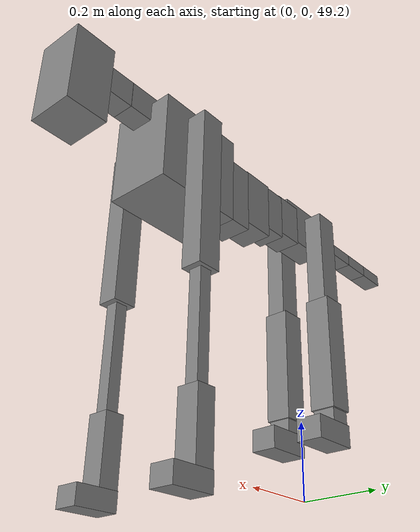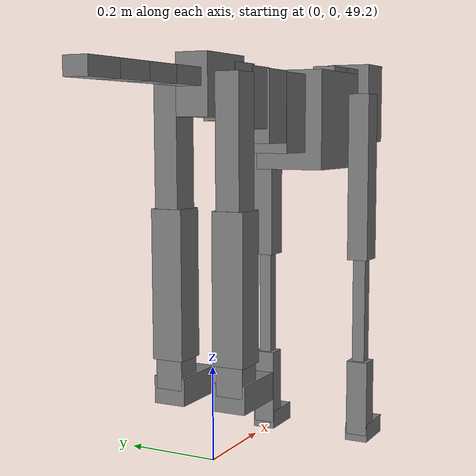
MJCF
<mujoco model="dog">

    <default>
        <joint armature="0.02" stiffness="1" damping="0.2" limited="true"/>
        <geom condim="3" friction="1 0.05 0.05" margin="0.01"/>
        <motor ctrllimited="true" ctrlrange="-1.0 1.0" forcelimited="true" gear="50"/>
    </default>

    <compiler inertiafromgeom="true" angle="radian"/>

    <option timestep="0.016" iterations="50" tolerance="1e-10" solver="Newton" jacobian="dense" cone="pyramidal"/>

    <size nconmax="20000" njmax="60000" nstack="5000000"/>
    <visual>
        <map force="0.1" zfar="30"/>
        <rgba haze="0.15 0.25 0.35 1"/>
        <quality shadowsize="2048"/>
        <global offwidth="800" offheight="800"/>
    </visual>

    <asset>
        <texture type="skybox" builtin="gradient" rgb1="0.3 0.5 0.7" rgb2="0 0 0" width="512" height="512"/>
        <texture name="texplane" type="2d" builtin="checker" rgb1=".2 .3 .4" rgb2=".1 0.15 0.2" width="512" height="512"
                 mark="cross" markrgb=".8 .8 .8"/>
        <texture name="texgeom" type="cube" builtin="flat" mark="cross" width="127" height="1278" rgb1="0.8 0.6 0.4"
                 rgb2="0.8 0.6 0.4" markrgb="1 1 1" random="0.01"/>

        <material name="matplane" reflectance="0.3" texture="texplane" texrepeat="1 1" texuniform="true"/>
        <material name="matgeom" texture="texgeom" texuniform="true" rgba="0.8 0.6 .4 1"/>
    </asset>

    <worldbody>
        <geom name="floor" pos="0 0 0" size="0 0 .25" type="plane" material="matplane" condim="3"/>

        <light directional="false" diffuse=".2 .2 .2" specular="0 0 0" pos="0 0 5" dir="0 0 -1" castshadow="false"/>
        <light mode="targetbodycom" target="torso" directional="false" diffuse=".8 .8 .8" specular="0.3 0.3 0.3"
               pos="0 0 4.0" dir="0 0 -1"/>

        <body name="root" pos="0 0 50">
            <freejoint name="root_1"/>
            <geom type="box" pos="0 0 -0.02" size="0.0774  0.0358  0.063" density="2030"/>

            <body name="spine1" pos="0.054 0 0">
                <joint name="spine1_y" axis="0 1 0" range="0 0.7" limited="true"/>
                <geom type="box" pos="0.02375 0 -0.03" size="0.04375  0.0375  0.05985" density="2030"/>

                <body name="spine2" pos="0.0612 0 0">
                    <joint name="spine2_y" axis="0 1 0" range="-0.15 0.15" limited="true"/>
                    <geom type="box" pos="0.03555  0  -0.04" size="0.04055  0.039  0.06615" density="2030"/>

                    <body name="spine3" pos="0.0730 0 0">
                        <joint name="spine3_y" axis="0 1 0" range="-0.15 0.15" limited="true"/>
                        <geom type="box" pos="0.03555  0  -0.057" size="0.04555  0.0445  0.081" density="2030"/>

                        <body name="spine4" pos="0.0780 0 0">
                            <joint name="spine4_y" axis="0 1 0" range="-0.15 0.15" limited="true"/>
                            <geom type="box" pos="0.05265  0  -0.07" size="0.05265  0.045  0.09135" density="2030"/>

                            <body name="torso" pos="0.1082 0 0">
                                <joint name="torso_y" axis="0 1 0" range="-0.15 0.15" limited="true"/>
                                <geom type="box" pos="0.11925  0  -0.085" size="0.11925  0.085  0.11745"
                                      density="2030"/>

                                <body name="neck1" pos="0.2160  0   0.0180">
                                    <joint name="neck1_y" axis="0 1 0" range="-1.2  -1" limited="true"/>
                                    <geom type="box" pos="0.0423  0  0" size="0.0423  0.03  0.036" density="2325"/>

                                    <body name="neck2" pos="0.0853  0  0">
                                        <joint name="neck2_y" axis="0 1 0" range="0.1  0" limited="true"/>
                                        <geom type="box" pos="0.0423  0  0" size="0.0423  0.03  0.036" density="2325"/>

                                        <body name="head" pos="0.0853  0  0">
                                            <joint name="head_y" axis="0 1 0" range="-0.3  -0.2" limited="true"/>
                                            <geom type="box" pos="0.0531  0  -0.055" size="0.0531  0.06  0.1044"
                                                  density="4030"/>

                                        </body>
                                    </body>
                                </body>

                                <body name="front_shoulder" pos="0.156  0   -0.0480">
                                    <joint name="front_shoulder_y" axis="0 1 0" range="-1 1.5" limited="true"/>
                                    <geom type="box" pos="0 0.13 -0.1773" size="0.0303  0.0259  0.2040" density="1158"/>
                                    <geom type="box" pos="0 -0.13 -0.1773" size="0.0303  0.0259  0.2040"
                                          density="1158"/>

                                    <body name="front_elbow" pos="0  0  -0.3546">
                                        <joint name="front_elbow_y" axis="0 1 0" range="-2 0" limited="true"/>
                                        <geom type="box" pos="0 0.13 -0.1495" size="0.0155  0.0158  0.1495"
                                              density="1081"/>
                                        <geom type="box" pos="0 -0.13 -0.1495" size="0.0155  0.0158  0.1495"
                                              density="1081"/>

                                        <body name="front_wrist" pos="0  0  -0.2989">
                                            <joint name="front_wrist_y" axis="0 1 0" range="-0.2 0" limited="true"/>
                                            <geom type="box" pos="0 0.13 -0.0807" size="0.0240  0.0267  0.0939"
                                                  density="1664"/>
                                            <geom type="box" pos="0 -0.13 -0.0807" size="0.0240  0.0267  0.0939"
                                                  density="1664"/>

                                            <body name="front_finger_end" pos="0  0  -0.1615">
                                                <joint name="front_finger_y" axis="0 1 0" range="-0.4 1"
                                                       limited="true"/>
                                                <geom type="box" pos="0.0286  0.13  -0.0074"
                                                      size="0.0524  0.0286  0.0224" density="1515"/>
                                                <geom type="box" pos="0.0286  -0.13  -0.0074"
                                                      size="0.0524  0.0286  0.0224" density="1515"/>

                                            </body>

                                        </body>
                                    </body>
                                </body>

                            </body>
                        </body>
                    </body>
                </body>
            </body>

            <body name="back_hip" pos="-0.03 0 -0.018">
                <joint name="back_hip_y" axis="0 1 0" range="-1.5 0.3" limited="true"/>
                <geom type="box" pos="0 0.07 -0.1325" size="0.0332  0.0260  0.1553" density="1154"/>
                <geom type="box" pos="0 -0.07 -0.1325" size="0.0332  0.0260  0.1553" density="1154"/>

                <body name="back_knee" pos="0  0  -0.2650">
                    <joint name="back_knee_y" axis="0 1 0" range="0 2.8" limited="true"/>
                    <geom type="box" pos="0 0.07 -0.1403" size="0.0349  0.0344  0.1559" density="1227"/>
                    <geom type="box" pos="0 -0.07 -0.1403" size="0.0349  0.0344  0.1559" density="1227"/>

                    <body name="back_ankle" pos="0  0  -0.2806">
                        <joint name="back_ankle_y" axis="0 1 0" range="-2.2 0" limited="true"/>
                        <geom type="box" pos="0 0.07 -0.0335" size="0.0297  0.0297  0.0447" density="1284"/>
                        <geom type="box" pos="0 -0.07 -0.0335" size="0.0297  0.0297  0.0447" density="1284"/>

                        <body name="back_toe_end" pos="0  0  -0.0670">
                            <joint name="back_toe_y" axis="0 1 0" range="-0.4 1" limited="true"/>
                            <geom type="box" pos="0.0352  0.07  -0.0142" size="0.0646  0.0352  0.0292" density="1515"/>
                            <geom type="box" pos="0.0352  -0.07  -0.0142" size="0.0646  0.0352  0.0292" density="1515"/>

                        </body>
                    </body>
                </body>
            </body>

            <body name="tail1" pos="-0.074 0 -0.006">
                <joint name="tail1_y" axis="0 1 0" range="-0.2 0.2" limited="true"/>
                <geom type="box" pos="-0.0536  0  0" size="0.045  0.025  0.0175" density="1587"/>

                <body name="tail2" pos="-0.09 0 0">
                    <joint name="tail2_y" axis="0 1 0" range="-0.2 0.2" limited="true"/>
                    <geom type="box" pos="-0.0536  0  0" size="0.045  0.025  0.0175" density="1587"/>

                    <body name="tail3" pos="-0.09 0 0">
                        <joint name="tail3_y" axis="0 1 0" range="-0.2 0.2" limited="true"/>
                        <geom type="box" pos="-0.0536  0  0" size="0.045  0.025  0.0175" density="1587"/>

                        <body name="tail4" pos="-0.09 0 0">
                            <joint name="tail4_y" axis="0 1 0" range="-0.2 0.2" limited="true"/>
                            <geom type="box" pos="-0.0536  0  0" size="0.045  0.025  0.0175" density="1587"/>

                        </body>
                    </body>
                </body>
            </body>
        </body>
    </worldbody>

    <actuator>
        <motor joint="spine1_y" forcerange="-150 150     "/>
        <motor joint="spine2_y" forcerange="-150 150     "/>
        <motor joint="spine3_y" forcerange="-150 150     "/>
        <motor joint="spine4_y" forcerange="-150 150     "/>
        <motor joint="torso_y" forcerange="-150 150     "/>
        <motor joint="neck1_y" forcerange="-100 100       "/>
        <motor joint="neck2_y" forcerange="-100 100       "/>
        <motor joint="head_y" forcerange="-150 150       "/>
        <motor joint="front_shoulder_y" forcerange="-128.03 144.73"/>
        <motor joint="front_elbow_y" forcerange="-113.39 101.71"/>
        <motor joint="front_wrist_y" forcerange="-63.88 149.63"/>
        <motor joint="front_finger_y" forcerange="-36.69 75.85"/>
        <motor joint="back_hip_y" forcerange="-332.58 214.38"/>
        <motor joint="back_knee_y" forcerange="-377.31 323.23"/>
        <motor joint="back_angle_y" forcerange="-156.56 218.78"/>
        <motor joint="back_toe_y" forcerange="-85.07 116.72"/>
        <motor joint="tail1_y" forcerange="-50 50     "/>
        <motor joint="tail2_y" forcerange="-50 50     "/>
        <motor joint="tail3_y" forcerange="-50 50     "/>
        <motor joint="tail4_y" forcerange="-50 50     "/>
    </actuator>
</mujoco>
